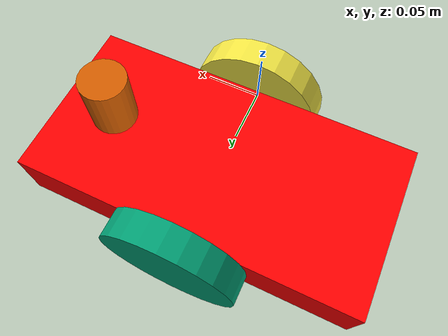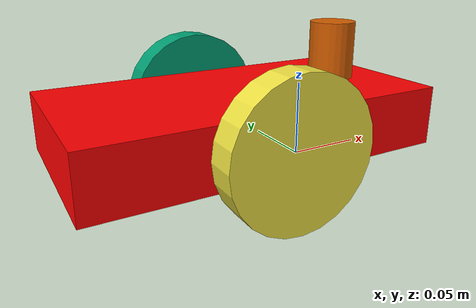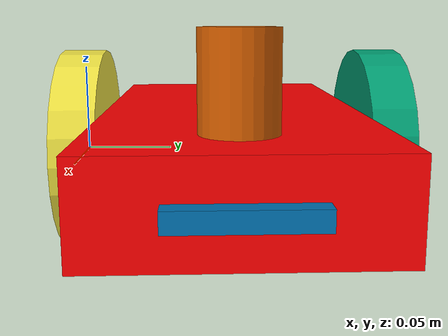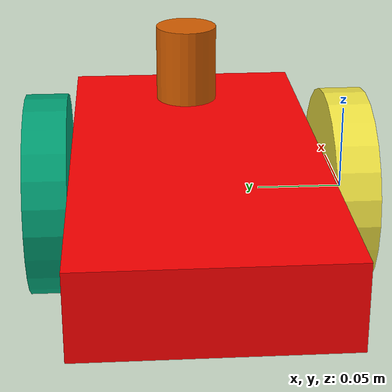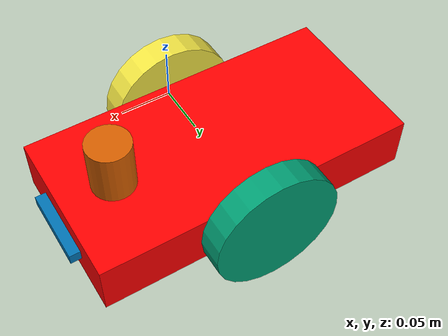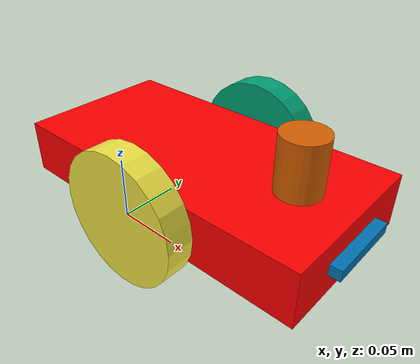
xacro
<?xml version="1.0"?>

<robot name="car" xmlns:xacro="http://www.ros.org/wiki/xacro">

<xacro:include filename="$(find robot_description)/urdf/plugin.gazebo" />

<material name="Red">
    <color rgba="1.0 0 0 1.0"/>
</material>

<link name="footprint">
</link>

<!-- chasiss -->
<link name="base_link">
    <inertial>
      <mass value="0.2"/>
      <origin xyz="0 0 0"/>
      <inertia ixx="0.2" ixy="0.0" ixz="0.0" iyy="0.2" iyz="0.0" izz="0.2"/>
    </inertial>
    <visual>
      <origin rpy="0 0 0" xyz="0 0 0"/>
      <geometry>
        <box size="0.3 0.15 0.05"/>
      </geometry>
      <material name="Red"/>
    </visual>
    <collision>
      <origin rpy="0 0 0" xyz="0 0 0"/>
      <geometry>
        <box size="0.3 0.15 0.05"/>
      </geometry>
    </collision>
  </link>

<joint name="footjoint" type="fixed">
    <parent link="footprint"/>
    <child link="base_link"/>
    <origin rpy="0 0 0" xyz="0 0.088 0"/>
  </joint>

  <!-- left wheel -->
<joint name="front_left_wheel_joint" type="continous">
    <axis xyz="0 1 0"/>
    <parent link="base_link"/>
    <child link="front_left_wheel_link"/>
    <origin rpy="0 0 0" xyz="0 0.088 0"/>
  </joint>

<link name="front_left_wheel_link">
    <inertial>
      <mass value="0.01"/>
      <origin xyz="0 0 0"/>
      <inertia ixx="0.01" ixy="0.0" ixz="0.0" iyy="0.01" iyz="0.0" izz="0.01"/>
    </inertial>
    <visual>
      <origin rpy="1.57079632679 0 0" xyz="0 0 0"/>
      <geometry>
        <cylinder length="0.025" radius="0.06"/>
      </geometry>
    </visual>
    <collision>
      <origin rpy="1.57079632679 0 0" xyz="0 0 0"/>
      <geometry>
        <cylinder length="0.025" radius="0.06"/>
      </geometry>
    </collision>
  </link>

<!-- right wheel -->
<joint name="front_right_wheel_joint" type="continous">
    <axis xyz="0 1 0"/>
    <parent link="base_link"/>
    <child link="front_right_wheel_link"/>
    <origin rpy="0 0 0" xyz="0 -0.088 0"/>
  </joint>

<link name="front_right_wheel_link">
    <inertial>
      <mass value="0.01"/>
      <origin xyz="0 0 0"/>
      <inertia ixx="0.01" ixy="0.0" ixz="0.0" iyy="0.01" iyz="0.0" izz="0.01"/>
    </inertial>
    <visual>
      <origin rpy="1.57079632679 0 0" xyz="0 0 0"/>
      <geometry>
        <cylinder length="0.025" radius="0.06"/>
      </geometry>
    </visual>
    <collision>
      <origin rpy="1.57079632679 0 0" xyz="0 0 0"/>
      <geometry>
        <cylinder length="0.025" radius="0.06"/>
      </geometry>
    </collision>
  </link>

  <link name="camera">
  <inertial>
<mass value="0.9"/>
<origin xyz="0 0 0" rpy="0 0 0"/>
<inertia ixx="1e-6" ixy="0" ixz="0" iyy="1e-6" iyz="0" izz="1e-6" />
</inertial>
<collision>
<origin xyz="0.0 0 0.0" rpy="0 0 0"/>
<geometry>
<box size="0.05 0.2 0.07"/>
</geometry>
</collision>
<visual>
<origin xyz="0.0 0 0.0" rpy="0 0 0"/>
<geometry>
<box size="0.01 0.07 0.01"/>
</geometry>
</visual>
</link>

<joint name="camera_joint" type="fixed">
<axis xyz="0 1 0" />
<origin xyz="0.155 0 0" rpy="0 0 0"/>
<parent link="base_link"/>
<child link="camera"/>
</joint>

<link name="hokuyo">
<collision>
<origin xyz="0 0 0" rpy="0 0 0"/>
<geometry>
<cylinder length="0.05" radius="0.02"/>
</geometry>
</collision>
<visual>
<origin xyz="0 0 0" rpy="0 0 0"/>
<geometry>
<cylinder length="0.05" radius="0.02"/>
</geometry>
</visual>
<inertial>
<mass value="1e-5" />
<origin xyz="0 0 0" rpy="0 0 0"/>
<inertia ixx="1e-6" ixy="0" ixz="0" iyy="1e-6" iyz="0" izz="1e-6" />
</inertial>
</link>

<joint name="hokuyo_joint" type="fixed">
<axis xyz="0 1 0" />
<origin xyz=".1 0 .05" rpy="0 0 0"/>
<parent link="base_link"/>
<child link="hokuyo"/>
</joint>

</robot>
